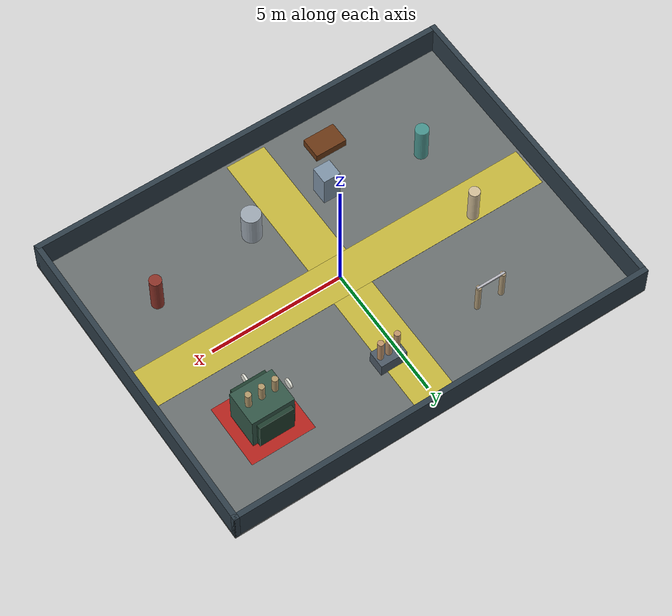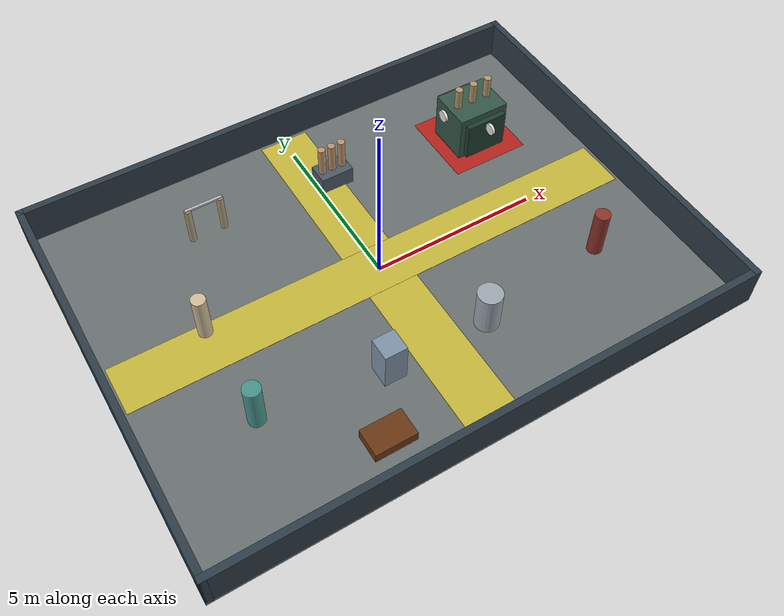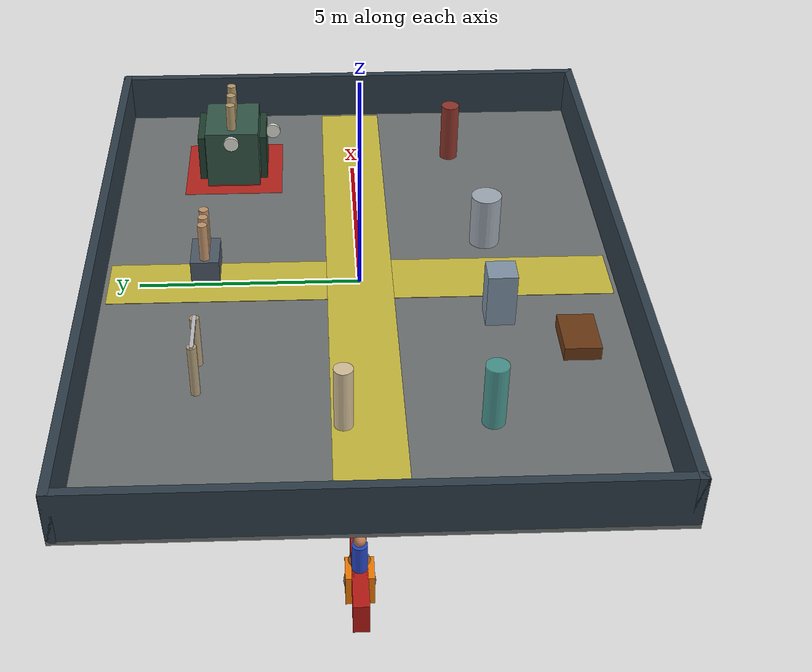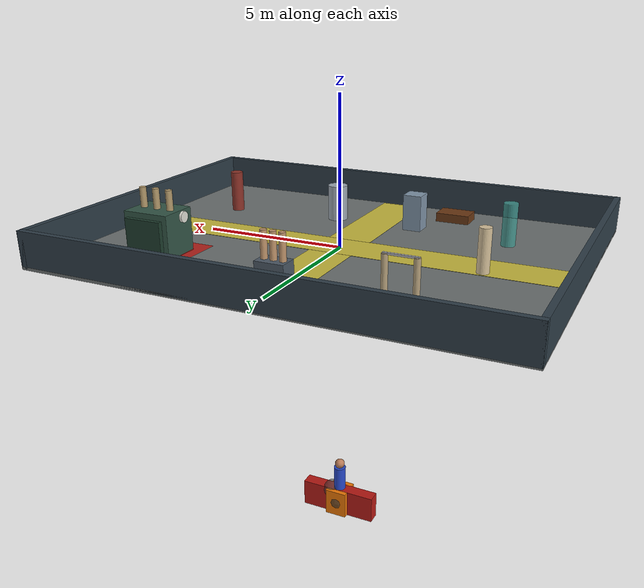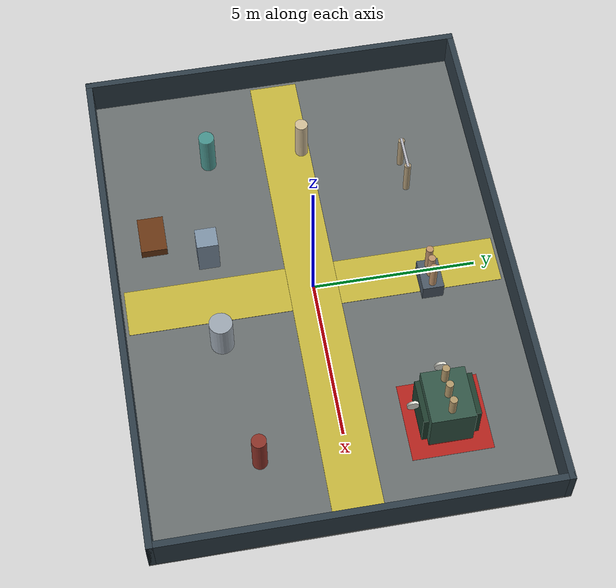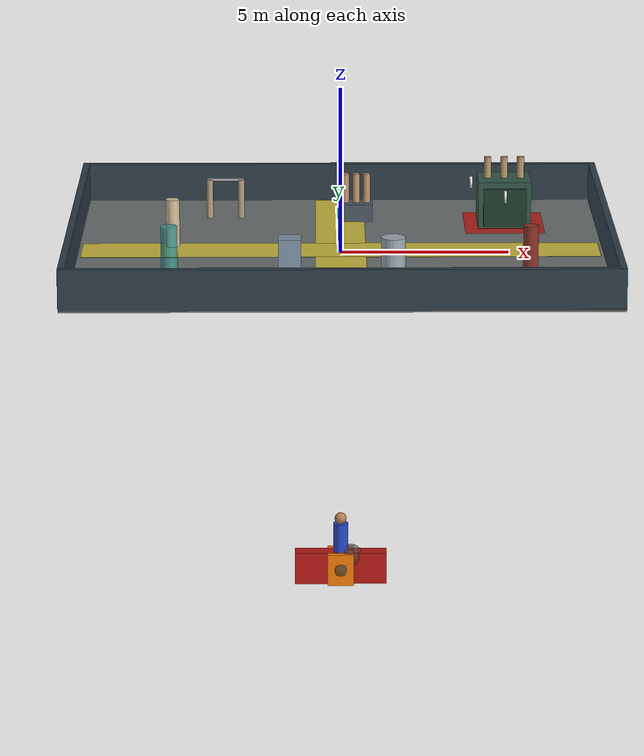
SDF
<sdf version="1.10">
 <world name="substation">
  <physics name="fast_ode" type="ignored">
   <max_step_size>0.01</max_step_size>
   <real_time_factor>1.0</real_time_factor>
  </physics>
  <plugin filename="gz-sim-physics-system" name="gz::sim::systems::Physics"/>
  <plugin filename="gz-sim-user-commands-system" name="gz::sim::systems::UserCommands"/>
  <plugin filename="gz-sim-scene-broadcaster-system" name="gz::sim::systems::SceneBroadcaster"/>
  <plugin filename="gz-sim-sensors-system" name="gz::sim::systems::Sensors">
   <render_engine>ogre2</render_engine>
  </plugin>
  <scene>
   <ambient>0.45 0.45 0.45 1</ambient>
   <background>0.55 0.70 0.85 1</background>
   <shadows>true</shadows>
  </scene>
  <light name="sun" type="directional">
   <pose>0 0 10 0 0 0</pose>
   <diffuse>0.9 0.9 0.85 1</diffuse>
   <specular>0.2 0.2 0.2 1</specular>
   <direction>-0.4 0.2 -1</direction>
  </light>
  <model name="yard_ground">
   <static>true</static>
   <link name="ground">
    <collision name="collision"><geometry><box><size>16 12 0.1</size></box></geometry></collision>
    <visual name="visual">
     <geometry><box><size>16 12 0.1</size></box></geometry>
     <material><ambient>0.34 0.36 0.36 1</ambient><diffuse>0.42 0.44 0.44 1</diffuse></material>
    </visual>
   </link>
  </model>
  <model name="perimeter_wall">
   <static>true</static>
   <link name="walls">
    <collision name="north">
     <pose>0 5.9 0.6 0 0 0</pose>
     <geometry><box><size>16 0.2 1.2</size></box></geometry>
    </collision>
    <collision name="south">
     <pose>0 -5.9 0.6 0 0 0</pose>
     <geometry><box><size>16 0.2 1.2</size></box></geometry>
    </collision>
    <collision name="east">
     <pose>7.9 0 0.6 0 0 0</pose>
     <geometry><box><size>0.2 12 1.2</size></box></geometry>
    </collision>
    <collision name="west">
     <pose>-7.9 0 0.6 0 0 0</pose>
     <geometry><box><size>0.2 12 1.2</size></box></geometry>
    </collision>
    <visual name="north_visual">
     <pose>0 5.9 0.6 0 0 0</pose>
     <geometry><box><size>16 0.2 1.2</size></box></geometry>
     <material><diffuse>0.18 0.24 0.28 1</diffuse></material>
    </visual>
    <visual name="south_visual">
     <pose>0 -5.9 0.6 0 0 0</pose>
     <geometry><box><size>16 0.2 1.2</size></box></geometry>
     <material><diffuse>0.18 0.24 0.28 1</diffuse></material>
    </visual>
    <visual name="east_visual">
     <pose>7.9 0 0.6 0 0 0</pose>
     <geometry><box><size>0.2 12 1.2</size></box></geometry>
     <material><diffuse>0.18 0.24 0.28 1</diffuse></material>
    </visual>
    <visual name="west_visual">
     <pose>-7.9 0 0.6 0 0 0</pose>
     <geometry><box><size>0.2 12 1.2</size></box></geometry>
     <material><diffuse>0.18 0.24 0.28 1</diffuse></material>
    </visual>
   </link>
  </model>
  <model name="inspection_lane_ns">
   <static>true</static>
   <pose>0 0 0.061 0 0 0</pose>
   <link name="mark">
    <visual name="visual">
     <geometry><box><size>1.5 11.4 0.01</size></box></geometry>
     <material><diffuse>0.78 0.72 0.24 1</diffuse></material>
    </visual>
   </link>
  </model>
  <model name="inspection_lane_ew">
   <static>true</static>
   <pose>0 0 0.062 0 0 0</pose>
   <link name="mark">
    <visual name="visual">
     <geometry><box><size>15.4 1.5 0.01</size></box></geometry>
     <material><diffuse>0.78 0.72 0.24 1</diffuse></material>
    </visual>
   </link>
  </model>
  <model name="transformer_exclusion_zone">
   <static>true</static>
   <pose>5 3 0.064 0 0 0</pose>
   <link name="mark">
    <visual name="visual">
     <geometry><box><size>2.4 2.4 0.012</size></box></geometry>
     <material><diffuse>0.85 0.08 0.05 0.75</diffuse></material>
    </visual>
   </link>
  </model>
  <model name="transformer-01">
   <static>true</static>
   <pose>5 3 0 0 0 0</pose>
   <link name="body">
    <collision name="tank_collision">
     <pose>0 0 0.75 0 0 0</pose>
     <geometry><box><size>1.6 1.3 1.5</size></box></geometry>
    </collision>
    <visual name="tank_visual">
     <pose>0 0 0.75 0 0 0</pose>
     <geometry><box><size>1.6 1.3 1.5</size></box></geometry>
     <material><diffuse>0.20 0.34 0.28 1</diffuse></material>
    </visual>
    <visual name="radiator_left">
     <pose>0 0.76 0.75 0 0 0</pose>
     <geometry><box><size>1.3 0.16 1.15</size></box></geometry>
     <material><diffuse>0.12 0.24 0.18 1</diffuse></material>
    </visual>
    <visual name="radiator_right">
     <pose>0 -0.76 0.75 0 0 0</pose>
     <geometry><box><size>1.3 0.16 1.15</size></box></geometry>
     <material><diffuse>0.12 0.24 0.18 1</diffuse></material>
    </visual>
    <visual name="bushing_a">
     <pose>-0.5 0 1.8 0 0 0</pose>
     <geometry><cylinder><radius>0.11</radius><length>0.7</length></cylinder></geometry>
     <material><diffuse>0.70 0.60 0.42 1</diffuse></material>
    </visual>
    <visual name="bushing_b">
     <pose>0 0 1.8 0 0 0</pose>
     <geometry><cylinder><radius>0.11</radius><length>0.7</length></cylinder></geometry>
     <material><diffuse>0.70 0.60 0.42 1</diffuse></material>
    </visual>
    <visual name="bushing_c">
     <pose>0.5 0 1.8 0 0 0</pose>
     <geometry><cylinder><radius>0.11</radius><length>0.7</length></cylinder></geometry>
     <material><diffuse>0.70 0.60 0.42 1</diffuse></material>
    </visual>
   </link>
  </model>
  <model name="breaker-01">
   <static>true</static>
   <pose>0.5 3.5 0 0 0 0</pose>
   <link name="body">
    <collision name="base_collision">
     <pose>0 0 0.3 0 0 0</pose>
     <geometry><box><size>1.0 0.65 0.6</size></box></geometry>
    </collision>
    <visual name="base_visual">
     <pose>0 0 0.3 0 0 0</pose>
     <geometry><box><size>1.0 0.65 0.6</size></box></geometry>
     <material><diffuse>0.30 0.35 0.40 1</diffuse></material>
    </visual>
    <visual name="pole_a">
     <pose>-0.32 0 1.05 0 0 0</pose>
     <geometry><cylinder><radius>0.11</radius><length>0.9</length></cylinder></geometry>
     <material><diffuse>0.75 0.58 0.42 1</diffuse></material>
    </visual>
    <visual name="pole_b">
     <pose>0 0 1.05 0 0 0</pose>
     <geometry><cylinder><radius>0.11</radius><length>0.9</length></cylinder></geometry>
     <material><diffuse>0.75 0.58 0.42 1</diffuse></material>
    </visual>
    <visual name="pole_c">
     <pose>0.32 0 1.05 0 0 0</pose>
     <geometry><cylinder><radius>0.11</radius><length>0.9</length></cylinder></geometry>
     <material><diffuse>0.75 0.58 0.42 1</diffuse></material>
    </visual>
   </link>
  </model>
  <model name="disconnect-switch-01">
   <static>true</static>
   <pose>-3.5 3.5 0 0 0 0</pose>
   <link name="body">
    <collision name="posts">
     <pose>0 0 0.6 0 0 0</pose>
     <geometry><box><size>1.3 0.45 1.2</size></box></geometry>
    </collision>
    <visual name="post_left">
     <pose>-0.48 0 0.72 0 0 0</pose>
     <geometry><cylinder><radius>0.10</radius><length>1.2</length></cylinder></geometry>
     <material><diffuse>0.70 0.62 0.48 1</diffuse></material>
    </visual>
    <visual name="post_right">
     <pose>0.48 0 0.72 0 0 0</pose>
     <geometry><cylinder><radius>0.10</radius><length>1.2</length></cylinder></geometry>
     <material><diffuse>0.70 0.62 0.48 1</diffuse></material>
    </visual>
    <visual name="blade">
     <pose>0 0 1.32 0 0 0</pose>
     <geometry><box><size>1.1 0.08 0.06</size></box></geometry>
     <material><diffuse>0.72 0.72 0.75 1</diffuse></material>
    </visual>
   </link>
  </model>
  <model name="arrester-01">
   <static>true</static>
   <pose>5.5 -2.5 0 0 0 0</pose>
   <link name="body">
    <collision name="collision">
     <pose>0 0 0.75 0 0 0</pose>
     <geometry><cylinder><radius>0.22</radius><length>1.5</length></cylinder></geometry>
    </collision>
    <visual name="visual">
     <pose>0 0 0.75 0 0 0</pose>
     <geometry><cylinder><radius>0.22</radius><length>1.5</length></cylinder></geometry>
     <material><diffuse>0.55 0.20 0.16 1</diffuse></material>
    </visual>
   </link>
  </model>
  <model name="current-transformer-01">
   <static>true</static>
   <pose>1.5 -3 0 0 0 0</pose>
   <link name="body">
    <collision name="collision">
     <pose>0 0 0.65 0 0 0</pose>
     <geometry><cylinder><radius>0.35</radius><length>1.3</length></cylinder></geometry>
    </collision>
    <visual name="visual">
     <pose>0 0 0.65 0 0 0</pose>
     <geometry><cylinder><radius>0.35</radius><length>1.3</length></cylinder></geometry>
     <material><diffuse>0.62 0.66 0.70 1</diffuse></material>
    </visual>
   </link>
  </model>
  <model name="potential-transformer-01">
   <static>true</static>
   <pose>-1.5 -3 0 0 0 0</pose>
   <link name="body">
    <collision name="collision">
     <pose>0 0 0.65 0 0 0</pose>
     <geometry><box><size>0.65 0.65 1.3</size></box></geometry>
    </collision>
    <visual name="visual">
     <pose>0 0 0.65 0 0 0</pose>
     <geometry><box><size>0.65 0.65 1.3</size></box></geometry>
     <material><diffuse>0.50 0.58 0.66 1</diffuse></material>
    </visual>
   </link>
  </model>
  <model name="glass-insulator-01">
   <static>true</static>
   <pose>-5 -2.5 0 0 0 0</pose>
   <link name="body">
    <collision name="collision">
     <pose>0 0 0.75 0 0 0</pose>
     <geometry><cylinder><radius>0.24</radius><length>1.5</length></cylinder></geometry>
    </collision>
    <visual name="visual">
     <pose>0 0 0.75 0 0 0</pose>
     <geometry><cylinder><radius>0.24</radius><length>1.5</length></cylinder></geometry>
     <material><diffuse>0.30 0.65 0.62 0.85</diffuse></material>
    </visual>
   </link>
  </model>
  <model name="porcelain-insulator-01">
   <static>true</static>
   <pose>-5 0.5 0 0 0 0</pose>
   <link name="body">
    <collision name="collision">
     <pose>0 0 0.75 0 0 0</pose>
     <geometry><cylinder><radius>0.20</radius><length>1.5</length></cylinder></geometry>
    </collision>
    <visual name="visual">
     <pose>0 0 0.75 0 0 0</pose>
     <geometry><cylinder><radius>0.20</radius><length>1.5</length></cylinder></geometry>
     <material><diffuse>0.83 0.75 0.60 1</diffuse></material>
    </visual>
   </link>
  </model>
  <model name="meter-pressure-01">
   <static>true</static>
   <pose>4 3 1.35 0 1.57079632679 0</pose>
   <link name="dial">
    <visual name="case">
     <geometry><cylinder><radius>0.18</radius><length>0.08</length></cylinder></geometry>
     <material><diffuse>0.90 0.90 0.86 1</diffuse></material>
    </visual>
    <visual name="needle">
     <pose>0 0.05 0 0 0 0</pose>
     <geometry><box><size>0.015 0.14 0.01</size></box></geometry>
     <material><diffuse>0.8 0.05 0.03 1</diffuse></material>
    </visual>
   </link>
  </model>
  <model name="meter-oil-01">
   <static>true</static>
   <pose>5 2 1.15 0 1.57079632679 0</pose>
   <link name="dial">
    <visual name="case">
     <geometry><cylinder><radius>0.18</radius><length>0.08</length></cylinder></geometry>
     <material><diffuse>0.90 0.90 0.86 1</diffuse></material>
    </visual>
    <visual name="needle">
     <pose>0 0.04 0 0 0 0</pose>
     <geometry><box><size>0.015 0.13 0.01</size></box></geometry>
     <material><diffuse>0.8 0.05 0.03 1</diffuse></material>
    </visual>
   </link>
  </model>
  <model name="static_pallets">
   <static>true</static>
   <pose>-2.5 -4.6 0.18 0 0 0</pose>
   <link name="body">
    <collision name="collision"><geometry><box><size>1.2 0.8 0.36</size></box></geometry></collision>
    <visual name="visual">
     <geometry><box><size>1.2 0.8 0.36</size></box></geometry>
     <material><diffuse>0.42 0.22 0.08 1</diffuse></material>
    </visual>
   </link>
  </model>
  <model name="scenario_dynamic_obstacle">
   <static>true</static>
   <pose>0 0 -10 0 0 0</pose>
   <link name="body">
    <collision name="collision"><geometry><box><size>0.8 0.8 1.0</size></box></geometry></collision>
    <visual name="visual">
     <geometry><box><size>0.8 0.8 1.0</size></box></geometry>
     <material><diffuse>0.95 0.48 0.02 1</diffuse></material>
    </visual>
   </link>
  </model>
  <model name="scenario_person_no_hardhat">
   <static>true</static>
   <pose>0 0 -10 0 0 0</pose>
   <link name="body">
    <collision name="collision">
     <pose>0 0 0.85 0 0 0</pose>
     <geometry><cylinder><radius>0.22</radius><length>1.7</length></cylinder></geometry>
    </collision>
    <visual name="body_visual">
     <pose>0 0 0.8 0 0 0</pose>
     <geometry><cylinder><radius>0.22</radius><length>1.2</length></cylinder></geometry>
     <material><diffuse>0.15 0.28 0.78 1</diffuse></material>
    </visual>
    <visual name="head">
     <pose>0 0 1.55 0 0 0</pose>
     <geometry><sphere><radius>0.18</radius></sphere></geometry>
     <material><diffuse>0.72 0.48 0.34 1</diffuse></material>
    </visual>
   </link>
  </model>
  <model name="scenario_smoke">
   <static>true</static>
   <pose>0 0 -10 0 0 0</pose>
   <link name="cloud">
    <visual name="a">
     <geometry><sphere><radius>0.45</radius></sphere></geometry>
     <material><diffuse>0.25 0.25 0.25 0.65</diffuse></material>
    </visual>
    <visual name="b">
     <pose>0.3 0 0.35 0 0 0</pose>
     <geometry><sphere><radius>0.35</radius></sphere></geometry>
     <material><diffuse>0.30 0.30 0.30 0.55</diffuse></material>
    </visual>
   </link>
  </model>
  <model name="scenario_fire">
   <static>true</static>
   <pose>0 0 -10 0 0 0</pose>
   <link name="flame">
    <visual name="visual">
     <geometry><cone><radius>0.35</radius><length>0.9</length></cone></geometry>
     <material><emissive>1 0.15 0.01 1</emissive><diffuse>1 0.35 0.01 1</diffuse></material>
    </visual>
   </link>
  </model>
  <model name="scenario_unreachable_blocker">
   <static>true</static>
   <pose>0 0 -10 0 0 0</pose>
   <link name="body">
    <collision name="collision"><geometry><box><size>2.8 0.45 1.0</size></box></geometry></collision>
    <visual name="visual">
     <geometry><box><size>2.8 0.45 1.0</size></box></geometry>
     <material><diffuse>0.72 0.10 0.08 1</diffuse></material>
    </visual>
   </link>
  </model>
 </world>
</sdf>
